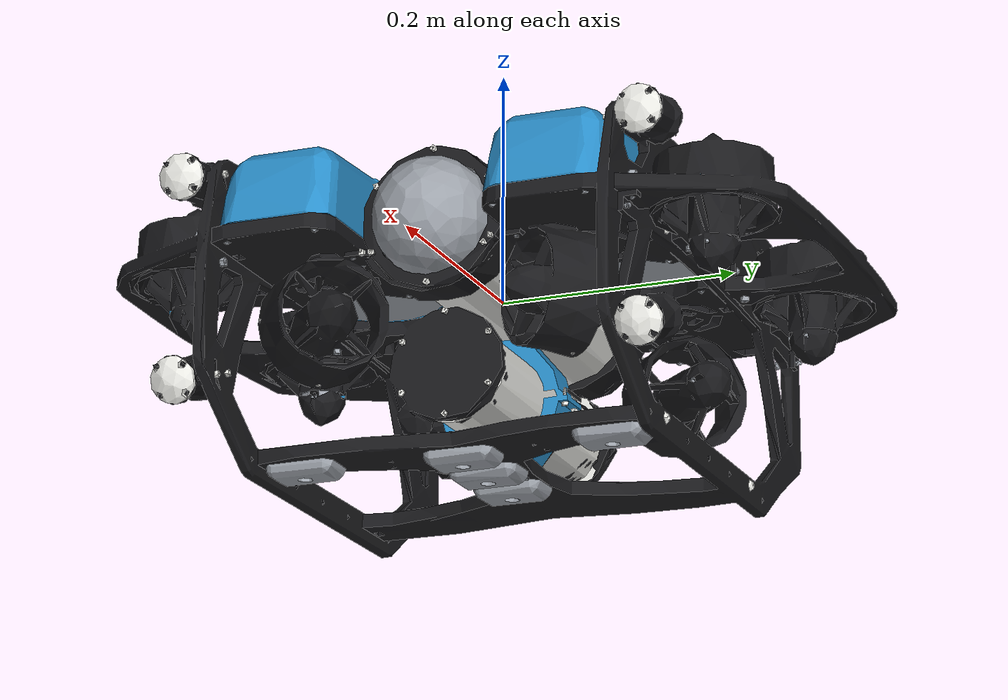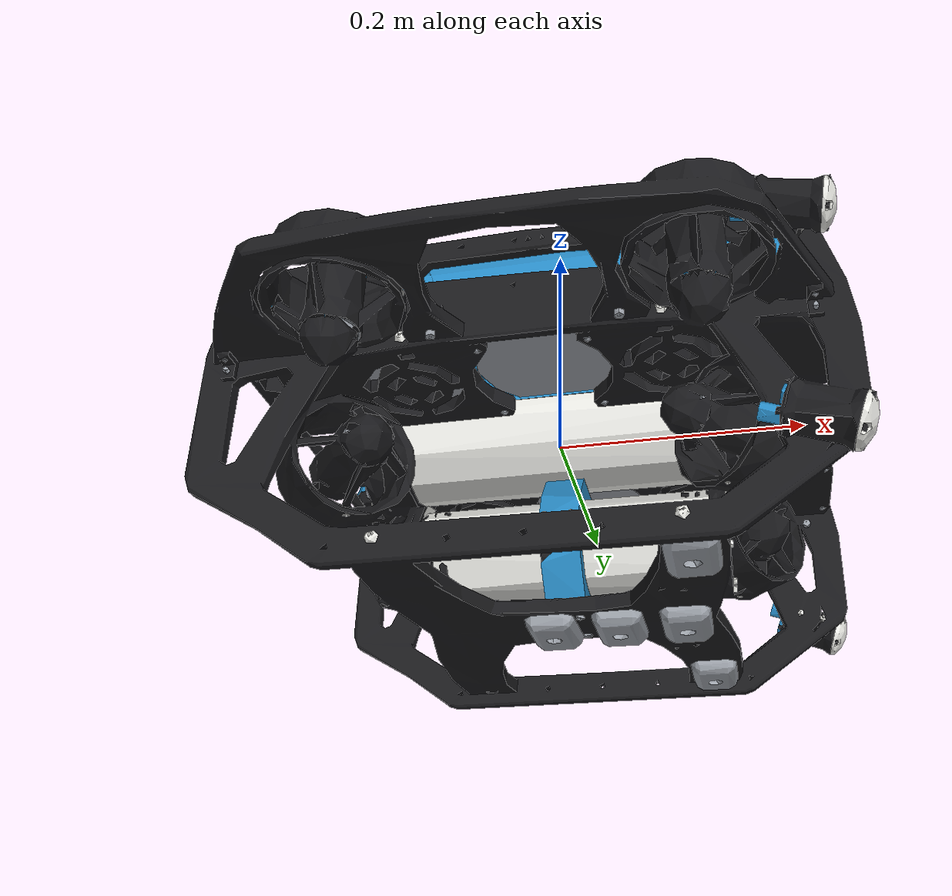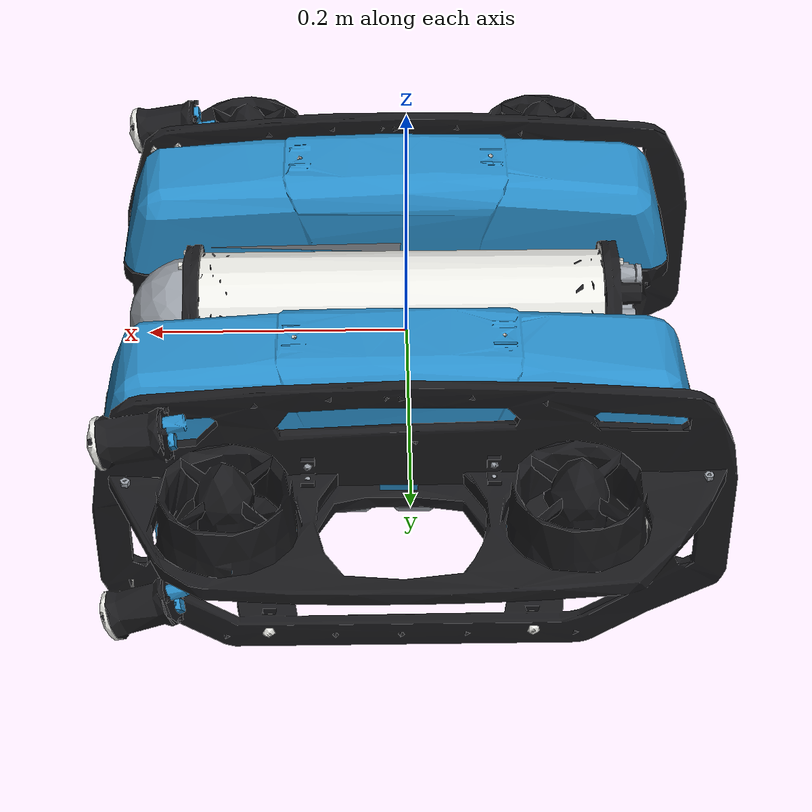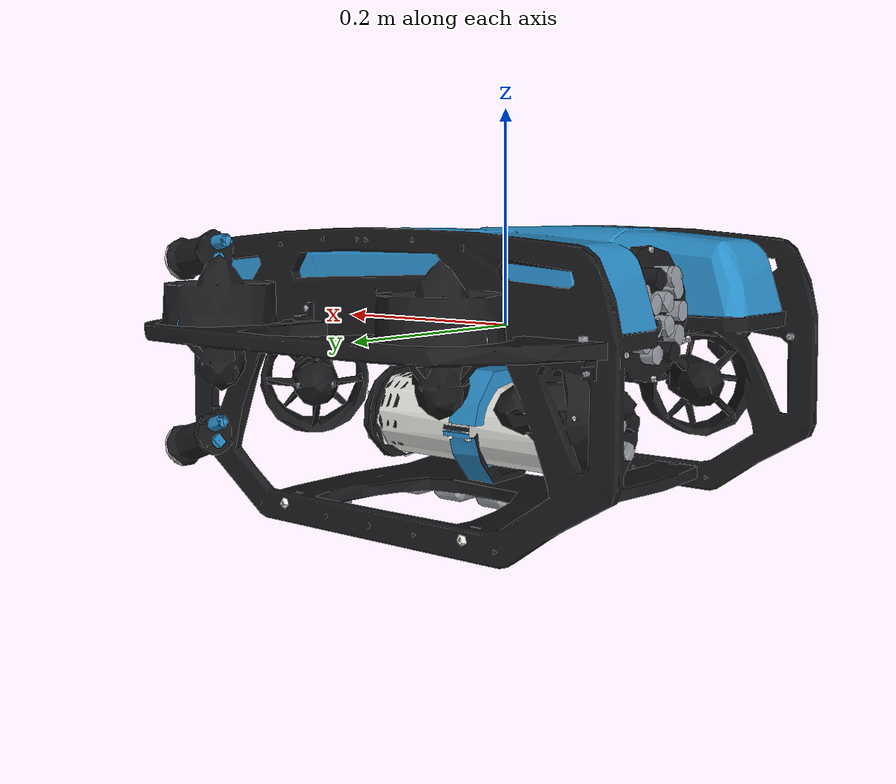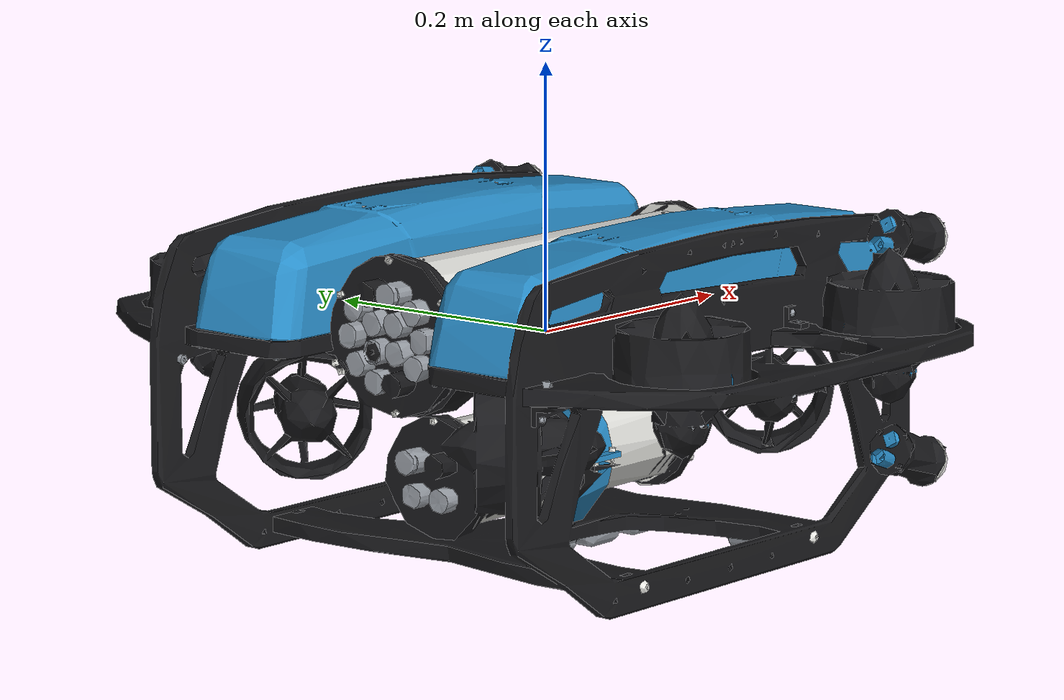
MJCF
<mujoco model="bluerov2_heavy_marinegym">
  <compiler angle="radian" meshdir="meshes" autolimits="true"/>

  <!-- density=0 viscosity=0: MuJoCo's built-in fluid model is OFF on purpose;
       all hydrodynamics are injected by hydro.py. -->
  <option timestep="0.002" integrator="implicitfast" density="0" viscosity="0"/>

  <visual>
    <headlight ambient="0.6 0.6 0.62" diffuse="0.85 0.85 0.88" specular="0.25 0.25 0.25"/>
    <rgba haze="0.12 0.18 0.28 1"/>
    <scale framelength="0.25" framewidth="0.008"/>
    <global offwidth="1280" offheight="960"/>
  </visual>

  <asset>
    <mesh name="bluerov_body"     file="bluerov_body.obj"/>
    <mesh name="bluerov_thruster" file="bluerov_thruster.obj"/>
    <material name="hull"      rgba="0.33 0.37 0.44 1" specular="0.35" shininess="0.3"/>
    <material name="thruster"  rgba="0.12 0.13 0.16 1" specular="0.4" shininess="0.4"/>
    <material name="collision" rgba="0.85 0.45 0.20 0.25"/>
    <mesh name="rovc_cyan"   file="rov_body_cyan.obj"/>
    <mesh name="rovc_white"  file="rov_body_white.obj"/>
    <mesh name="rovc_black"  file="rov_body_black.obj"/>
    <mesh name="rovc_silver" file="rov_body_silver.obj"/>
    <material name="rovc_cyan"   rgba="0.16 0.55 0.78 1" specular="0.3" shininess="0.35"/>
    <material name="rovc_white"  rgba="0.90 0.90 0.88 1" specular="0.3" shininess="0.35"/>
    <material name="rovc_black"  rgba="0.10 0.10 0.11 1" specular="0.3" shininess="0.35"/>
    <material name="rovc_silver" rgba="0.60 0.62 0.65 1" specular="0.4" shininess="0.4"/>
  </asset>

  <default>
    <default class="visual">
      <geom type="mesh" contype="0" conaffinity="0" group="2"/>
    </default>
    <default class="collision">
      <geom type="box" group="3" material="collision" contype="1" conaffinity="1"/>
    </default>
    <default class="thruster">
      <site type="cylinder" size="0.012 0.004" rgba="0.1 0.7 1 1" group="4"/>
    </default>
    <default class="ref">
      <site type="sphere" size="0.012" group="4"/>
    </default>
  </default>

  <worldbody>
    <light name="key"  pos="0.8 0.8 2.5"  dir="-0.3 -0.3 -1" directional="true"
           diffuse="0.55 0.55 0.6" specular="0.2 0.2 0.2"/>
    <light name="fill" pos="-0.8 -0.6 1.2" dir="0.4 0.3 -1" directional="true"
           diffuse="0.35 0.35 0.4" specular="0.1 0.1 0.1"/>
    <body name="base_link" pos="0 0 0">
      <freejoint name="free"/>
      <inertial pos="0 0 0" mass="11.5" diaginertia="0.3291 0.6347 0.6109"/>

      <geom class="visual" mesh="rovc_cyan"   material="rovc_cyan"/>
      <geom class="visual" mesh="rovc_white"  material="rovc_white"/>
      <geom class="visual" mesh="rovc_black"  material="rovc_black"/>
      <geom class="visual" mesh="rovc_silver" material="rovc_silver"/>

      <!-- ===== collision proxy ===== -->
      <geom class="collision" pos="0 0 -0.05" size="0.25 0.175 0.125"/>

      <site name="thruster_0" class="thruster" pos="0.1355 -0.1 -0.0725" quat="0.92388 0 0 0.382684"/>
      <site name="thruster_1" class="thruster" pos="0.1355 0.1 -0.0725" quat="0.92388 0 0 -0.382684"/>
      <site name="thruster_2" class="thruster" pos="-0.1475 -0.1 -0.0725" quat="0.382683 0 0 0.92388"/>
      <site name="thruster_3" class="thruster" pos="-0.1475 0.1 -0.0725" quat="-0.382683 0 0 0.92388"/>
      <site name="thruster_4" class="thruster" pos="0.12 -0.22 -0.005" quat="-0.707107 0 0.707107 0"/>
      <site name="thruster_5" class="thruster" pos="0.12 0.22 -0.005" quat="-0.707107 0 0.707107 0"/>
      <site name="thruster_6" class="thruster" pos="-0.12 -0.22 -0.005" quat="-0.707107 0 0.707107 0"/>
      <site name="thruster_7" class="thruster" pos="-0.12 0.22 -0.005" quat="-0.707107 0 0.707107 0"/>

      <!-- reference site at the base_link origin -->
      <site name="base_origin" class="ref" pos="0 0 0" rgba="1 0.2 0.2 1"/>
    </body>
  </worldbody>

  <!-- ===== 8 thruster force actuators (ctrl = thrust in N, T200 curve) ===== -->
  <actuator>
    <general name="thr0" site="thruster_0" gear="1 0 0 0 0 0" ctrlrange="-51.5507 64.1319"/>
    <general name="thr1" site="thruster_1" gear="1 0 0 0 0 0" ctrlrange="-51.5507 64.1319"/>
    <general name="thr2" site="thruster_2" gear="1 0 0 0 0 0" ctrlrange="-51.5507 64.1319"/>
    <general name="thr3" site="thruster_3" gear="1 0 0 0 0 0" ctrlrange="-51.5507 64.1319"/>
    <general name="thr4" site="thruster_4" gear="1 0 0 0 0 0" ctrlrange="-51.5507 64.1319"/>
    <general name="thr5" site="thruster_5" gear="1 0 0 0 0 0" ctrlrange="-51.5507 64.1319"/>
    <general name="thr6" site="thruster_6" gear="1 0 0 0 0 0" ctrlrange="-51.5507 64.1319"/>
    <general name="thr7" site="thruster_7" gear="1 0 0 0 0 0" ctrlrange="-51.5507 64.1319"/>
  </actuator>
</mujoco>
